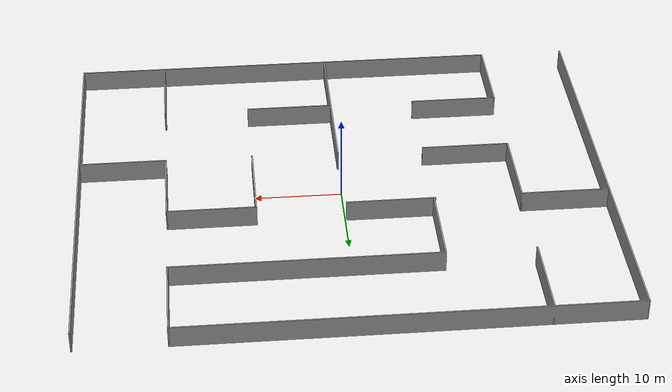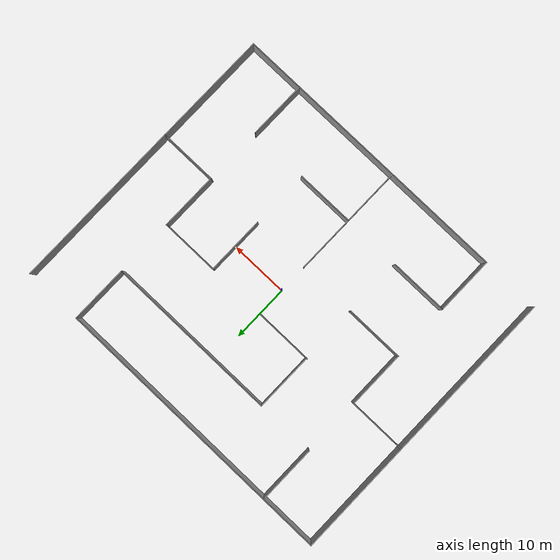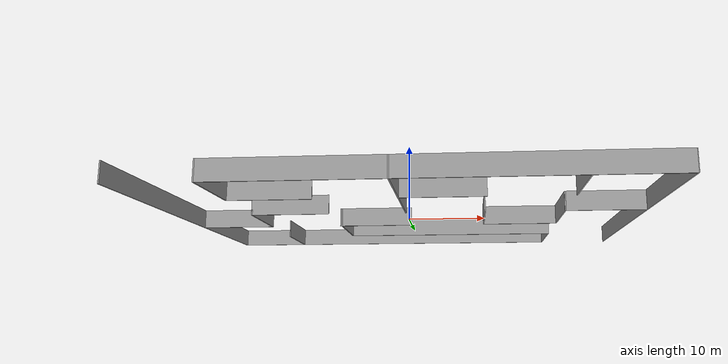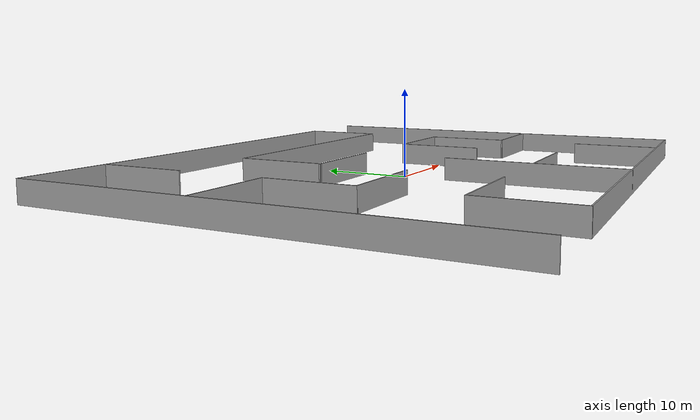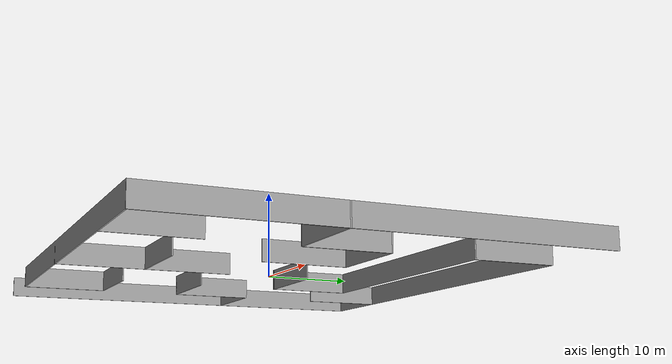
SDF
<?xml version='1.0'?>
<sdf version='1.7'>
  <model name='maze'>
    <link name='Wall_0'>
      <pose>-30 0 0 0 -0 1.5708</pose>
      <self_collide>0</self_collide>
      <enable_wind>0</enable_wind>
      <kinematic>0</kinematic>
      <visual name='Wall_0_Visual'>
        <pose>0 0 1.25 0 -0 0</pose>
        <geometry>
          <box>
            <size>50.15 0.15 2.5</size>
          </box>
        </geometry>
        <material>
          <script>
            <uri>file://media/materials/scripts/gazebo.material</uri>
            <name>Gazebo/Grey</name>
          </script>
          <ambient>1 1 1 1</ambient>
          <shader type='pixel'/>
        </material>
        <meta>
          <layer>0</layer>
        </meta>
        <transparency>0</transparency>
        <cast_shadows>1</cast_shadows>
      </visual>
      <collision name='Wall_0_Collision'>
        <laser_retro>0</laser_retro>
        <max_contacts>10</max_contacts>
        <pose>0 0 1.25 0 -0 0</pose>
        <geometry>
          <box>
            <size>50.15 0.15 2.5</size>
          </box>
        </geometry>
        <surface>
          <friction>
            <ode>
              <mu>1</mu>
              <mu2>1</mu2>
              <fdir1>0 0 0</fdir1>
              <slip1>0</slip1>
              <slip2>0</slip2>
            </ode>
            <torsional>
              <coefficient>1</coefficient>
              <patch_radius>0</patch_radius>
              <surface_radius>0</surface_radius>
              <use_patch_radius>1</use_patch_radius>
              <ode>
                <slip>0</slip>
              </ode>
            </torsional>
          </friction>
          <bounce>
            <restitution_coefficient>0</restitution_coefficient>
            <threshold>1e+06</threshold>
          </bounce>
          <contact>
            <collide_without_contact>0</collide_without_contact>
            <collide_without_contact_bitmask>1</collide_without_contact_bitmask>
            <collide_bitmask>1</collide_bitmask>
            <ode>
              <soft_cfm>0</soft_cfm>
              <soft_erp>0.2</soft_erp>
              <kp>1e+13</kp>
              <kd>1</kd>
              <max_vel>0.01</max_vel>
              <min_depth>0</min_depth>
            </ode>
            <bullet>
              <split_impulse>1</split_impulse>
              <split_impulse_penetration_threshold>-0.01</split_impulse_penetration_threshold>
              <soft_cfm>0</soft_cfm>
              <soft_erp>0.2</soft_erp>
              <kp>1e+13</kp>
              <kd>1</kd>
            </bullet>
          </contact>
        </surface>
      </collision>
    </link>
    <link name='Wall_1'>
      <pose>-5 25 0 0 -0 0</pose>
      <self_collide>0</self_collide>
      <enable_wind>0</enable_wind>
      <kinematic>0</kinematic>
      <gravity>1</gravity>
      <inertial>
        <mass>1</mass>
        <pose>0 0 0 0 -0 0</pose>
        <inertia>
          <ixx>1</ixx>
          <ixy>0</ixy>
          <ixz>0</ixz>
          <iyy>1</iyy>
          <iyz>0</iyz>
          <izz>1</izz>
        </inertia>
      </inertial>
      <visual name='Wall_1_Visual'>
        <pose>0 0 1.25 0 -0 0</pose>
        <geometry>
          <box>
            <size>50 0.15 2.5</size>
          </box>
        </geometry>
        <material>
          <script>
            <uri>file://media/materials/scripts/gazebo.material</uri>
            <name>Gazebo/Grey</name>
          </script>
          <ambient>1 1 1 1</ambient>
          <shader type='pixel'>
            <normal_map>__default__</normal_map>
          </shader>
          <diffuse>0.7 0.7 0.7 1</diffuse>
          <specular>0.01 0.01 0.01 1</specular>
          <emissive>0 0 0 1</emissive>
        </material>
        <meta>
          <layer>0</layer>
        </meta>
        <transparency>0</transparency>
        <cast_shadows>1</cast_shadows>
      </visual>
      <collision name='Wall_1_Collision'>
        <laser_retro>0</laser_retro>
        <max_contacts>10</max_contacts>
        <pose>0 0 1.25 0 -0 0</pose>
        <geometry>
          <box>
            <size>50 0.15 2.5</size>
          </box>
        </geometry>
        <surface>
          <friction>
            <ode>
              <mu>1</mu>
              <mu2>1</mu2>
              <fdir1>0 0 0</fdir1>
              <slip1>0</slip1>
              <slip2>0</slip2>
            </ode>
            <torsional>
              <coefficient>1</coefficient>
              <patch_radius>0</patch_radius>
              <surface_radius>0</surface_radius>
              <use_patch_radius>1</use_patch_radius>
              <ode>
                <slip>0</slip>
              </ode>
            </torsional>
          </friction>
          <bounce>
            <restitution_coefficient>0</restitution_coefficient>
            <threshold>1e+06</threshold>
          </bounce>
          <contact>
            <collide_without_contact>0</collide_without_contact>
            <collide_without_contact_bitmask>1</collide_without_contact_bitmask>
            <collide_bitmask>1</collide_bitmask>
            <ode>
              <soft_cfm>0</soft_cfm>
              <soft_erp>0.2</soft_erp>
              <kp>1e+13</kp>
              <kd>1</kd>
              <max_vel>0.01</max_vel>
              <min_depth>0</min_depth>
            </ode>
            <bullet>
              <split_impulse>1</split_impulse>
              <split_impulse_penetration_threshold>-0.01</split_impulse_penetration_threshold>
              <soft_cfm>0</soft_cfm>
              <soft_erp>0.2</soft_erp>
              <kp>1e+13</kp>
              <kd>1</kd>
            </bullet>
          </contact>
        </surface>
      </collision>
    </link>
    <link name='Wall_10'>
      <pose>-25 5 0 0 -0 0</pose>
      <self_collide>0</self_collide>
      <enable_wind>0</enable_wind>
      <kinematic>0</kinematic>
      <visual name='Wall_10_Visual'>
        <pose>0 0 1.25 0 -0 0</pose>
        <geometry>
          <box>
            <size>10.15 0.15 2.5</size>
          </box>
        </geometry>
        <material>
          <script>
            <uri>file://media/materials/scripts/gazebo.material</uri>
            <name>Gazebo/Grey</name>
          </script>
          <ambient>1 1 1 1</ambient>
          <shader type='pixel'/>
        </material>
        <meta>
          <layer>0</layer>
        </meta>
        <transparency>0</transparency>
        <cast_shadows>1</cast_shadows>
      </visual>
      <collision name='Wall_10_Collision'>
        <laser_retro>0</laser_retro>
        <max_contacts>10</max_contacts>
        <pose>0 0 1.25 0 -0 0</pose>
        <geometry>
          <box>
            <size>10.15 0.15 2.5</size>
          </box>
        </geometry>
        <surface>
          <friction>
            <ode>
              <mu>1</mu>
              <mu2>1</mu2>
              <fdir1>0 0 0</fdir1>
              <slip1>0</slip1>
              <slip2>0</slip2>
            </ode>
            <torsional>
              <coefficient>1</coefficient>
              <patch_radius>0</patch_radius>
              <surface_radius>0</surface_radius>
              <use_patch_radius>1</use_patch_radius>
              <ode>
                <slip>0</slip>
              </ode>
            </torsional>
          </friction>
          <bounce>
            <restitution_coefficient>0</restitution_coefficient>
            <threshold>1e+06</threshold>
          </bounce>
          <contact>
            <collide_without_contact>0</collide_without_contact>
            <collide_without_contact_bitmask>1</collide_without_contact_bitmask>
            <collide_bitmask>1</collide_bitmask>
            <ode>
              <soft_cfm>0</soft_cfm>
              <soft_erp>0.2</soft_erp>
              <kp>1e+13</kp>
              <kd>1</kd>
              <max_vel>0.01</max_vel>
              <min_depth>0</min_depth>
            </ode>
            <bullet>
              <split_impulse>1</split_impulse>
              <split_impulse_penetration_threshold>-0.01</split_impulse_penetration_threshold>
              <soft_cfm>0</soft_cfm>
              <soft_erp>0.2</soft_erp>
              <kp>1e+13</kp>
              <kd>1</kd>
            </bullet>
          </contact>
        </surface>
      </collision>
    </link>
    <link name='Wall_13'>
      <pose>-20 0 0 0 0 -1.5708</pose>
      <self_collide>0</self_collide>
      <enable_wind>0</enable_wind>
      <kinematic>0</kinematic>
      <visual name='Wall_13_Visual'>
        <pose>0 0 1.25 0 -0 0</pose>
        <geometry>
          <box>
            <size>10.15 0.15 2.5</size>
          </box>
        </geometry>
        <material>
          <script>
            <uri>file://media/materials/scripts/gazebo.material</uri>
            <name>Gazebo/Grey</name>
          </script>
          <ambient>1 1 1 1</ambient>
          <shader type='pixel'/>
        </material>
        <meta>
          <layer>0</layer>
        </meta>
        <transparency>0</transparency>
        <cast_shadows>1</cast_shadows>
      </visual>
      <collision name='Wall_13_Collision'>
        <laser_retro>0</laser_retro>
        <max_contacts>10</max_contacts>
        <pose>0 0 1.25 0 -0 0</pose>
        <geometry>
          <box>
            <size>10.15 0.15 2.5</size>
          </box>
        </geometry>
        <surface>
          <friction>
            <ode>
              <mu>1</mu>
              <mu2>1</mu2>
              <fdir1>0 0 0</fdir1>
              <slip1>0</slip1>
              <slip2>0</slip2>
            </ode>
            <torsional>
              <coefficient>1</coefficient>
              <patch_radius>0</patch_radius>
              <surface_radius>0</surface_radius>
              <use_patch_radius>1</use_patch_radius>
              <ode>
                <slip>0</slip>
              </ode>
            </torsional>
          </friction>
          <bounce>
            <restitution_coefficient>0</restitution_coefficient>
            <threshold>1e+06</threshold>
          </bounce>
          <contact>
            <collide_without_contact>0</collide_without_contact>
            <collide_without_contact_bitmask>1</collide_without_contact_bitmask>
            <collide_bitmask>1</collide_bitmask>
            <ode>
              <soft_cfm>0</soft_cfm>
              <soft_erp>0.2</soft_erp>
              <kp>1e+13</kp>
              <kd>1</kd>
              <max_vel>0.01</max_vel>
              <min_depth>0</min_depth>
            </ode>
            <bullet>
              <split_impulse>1</split_impulse>
              <split_impulse_penetration_threshold>-0.01</split_impulse_penetration_threshold>
              <soft_cfm>0</soft_cfm>
              <soft_erp>0.2</soft_erp>
              <kp>1e+13</kp>
              <kd>1</kd>
            </bullet>
          </contact>
        </surface>
      </collision>
    </link>
    <link name='Wall_15'>
      <pose>-15 -5 0 0 -0 0</pose>
      <self_collide>0</self_collide>
      <enable_wind>0</enable_wind>
      <kinematic>0</kinematic>
      <visual name='Wall_15_Visual'>
        <pose>0 0 1.25 0 -0 0</pose>
        <geometry>
          <box>
            <size>10.15 0.15 2.5</size>
          </box>
        </geometry>
        <material>
          <script>
            <uri>file://media/materials/scripts/gazebo.material</uri>
            <name>Gazebo/Grey</name>
          </script>
          <ambient>1 1 1 1</ambient>
          <shader type='pixel'/>
        </material>
        <meta>
          <layer>0</layer>
        </meta>
        <transparency>0</transparency>
        <cast_shadows>1</cast_shadows>
      </visual>
      <collision name='Wall_15_Collision'>
        <laser_retro>0</laser_retro>
        <max_contacts>10</max_contacts>
        <pose>0 0 1.25 0 -0 0</pose>
        <geometry>
          <box>
            <size>10.15 0.15 2.5</size>
          </box>
        </geometry>
        <surface>
          <friction>
            <ode>
              <mu>1</mu>
              <mu2>1</mu2>
              <fdir1>0 0 0</fdir1>
              <slip1>0</slip1>
              <slip2>0</slip2>
            </ode>
            <torsional>
              <coefficient>1</coefficient>
              <patch_radius>0</patch_radius>
              <surface_radius>0</surface_radius>
              <use_patch_radius>1</use_patch_radius>
              <ode>
                <slip>0</slip>
              </ode>
            </torsional>
          </friction>
          <bounce>
            <restitution_coefficient>0</restitution_coefficient>
            <threshold>1e+06</threshold>
          </bounce>
          <contact>
            <collide_without_contact>0</collide_without_contact>
            <collide_without_contact_bitmask>1</collide_without_contact_bitmask>
            <collide_bitmask>1</collide_bitmask>
            <ode>
              <soft_cfm>0</soft_cfm>
              <soft_erp>0.2</soft_erp>
              <kp>1e+13</kp>
              <kd>1</kd>
              <max_vel>0.01</max_vel>
              <min_depth>0</min_depth>
            </ode>
            <bullet>
              <split_impulse>1</split_impulse>
              <split_impulse_penetration_threshold>-0.01</split_impulse_penetration_threshold>
              <soft_cfm>0</soft_cfm>
              <soft_erp>0.2</soft_erp>
              <kp>1e+13</kp>
              <kd>1</kd>
            </bullet>
          </contact>
        </surface>
      </collision>
    </link>
    <link name='Wall_17'>
      <pose>-20 20 0 0 0 -1.5708</pose>
      <self_collide>0</self_collide>
      <enable_wind>0</enable_wind>
      <kinematic>0</kinematic>
      <visual name='Wall_17_Visual'>
        <pose>0 0 1.25 0 -0 0</pose>
        <geometry>
          <box>
            <size>10.15 0.15 2.5</size>
          </box>
        </geometry>
        <material>
          <script>
            <uri>file://media/materials/scripts/gazebo.material</uri>
            <name>Gazebo/Grey</name>
          </script>
          <ambient>1 1 1 1</ambient>
          <shader type='pixel'/>
        </material>
        <meta>
          <layer>0</layer>
        </meta>
        <transparency>0</transparency>
        <cast_shadows>1</cast_shadows>
      </visual>
      <collision name='Wall_17_Collision'>
        <laser_retro>0</laser_retro>
        <max_contacts>10</max_contacts>
        <pose>0 0 1.25 0 -0 0</pose>
        <geometry>
          <box>
            <size>10.15 0.15 2.5</size>
          </box>
        </geometry>
        <surface>
          <friction>
            <ode>
              <mu>1</mu>
              <mu2>1</mu2>
              <fdir1>0 0 0</fdir1>
              <slip1>0</slip1>
              <slip2>0</slip2>
            </ode>
            <torsional>
              <coefficient>1</coefficient>
              <patch_radius>0</patch_radius>
              <surface_radius>0</surface_radius>
              <use_patch_radius>1</use_patch_radius>
              <ode>
                <slip>0</slip>
              </ode>
            </torsional>
          </friction>
          <bounce>
            <restitution_coefficient>0</restitution_coefficient>
            <threshold>1e+06</threshold>
          </bounce>
          <contact>
            <collide_without_contact>0</collide_without_contact>
            <collide_without_contact_bitmask>1</collide_without_contact_bitmask>
            <collide_bitmask>1</collide_bitmask>
            <ode>
              <soft_cfm>0</soft_cfm>
              <soft_erp>0.2</soft_erp>
              <kp>1e+13</kp>
              <kd>1</kd>
              <max_vel>0.01</max_vel>
              <min_depth>0</min_depth>
            </ode>
            <bullet>
              <split_impulse>1</split_impulse>
              <split_impulse_penetration_threshold>-0.01</split_impulse_penetration_threshold>
              <soft_cfm>0</soft_cfm>
              <soft_erp>0.2</soft_erp>
              <kp>1e+13</kp>
              <kd>1</kd>
            </bullet>
          </contact>
        </surface>
      </collision>
    </link>
    <link name='Wall_19'>
      <pose>-1e-06 -15 0 0 -0 1.5708</pose>
      <self_collide>0</self_collide>
      <enable_wind>0</enable_wind>
      <kinematic>0</kinematic>
      <visual name='Wall_19_Visual'>
        <pose>0 0 1.25 0 -0 0</pose>
        <geometry>
          <box>
            <size>20.15 0.15 2.5</size>
          </box>
        </geometry>
        <material>
          <script>
            <uri>file://media/materials/scripts/gazebo.material</uri>
            <name>Gazebo/Grey</name>
          </script>
          <ambient>1 1 1 1</ambient>
          <shader type='pixel'/>
        </material>
        <meta>
          <layer>0</layer>
        </meta>
        <transparency>0</transparency>
        <cast_shadows>1</cast_shadows>
      </visual>
      <collision name='Wall_19_Collision'>
        <laser_retro>0</laser_retro>
        <max_contacts>10</max_contacts>
        <pose>0 0 1.25 0 -0 0</pose>
        <geometry>
          <box>
            <size>20.15 0.15 2.5</size>
          </box>
        </geometry>
        <surface>
          <friction>
            <ode>
              <mu>1</mu>
              <mu2>1</mu2>
              <fdir1>0 0 0</fdir1>
              <slip1>0</slip1>
              <slip2>0</slip2>
            </ode>
            <torsional>
              <coefficient>1</coefficient>
              <patch_radius>0</patch_radius>
              <surface_radius>0</surface_radius>
              <use_patch_radius>1</use_patch_radius>
              <ode>
                <slip>0</slip>
              </ode>
            </torsional>
          </friction>
          <bounce>
            <restitution_coefficient>0</restitution_coefficient>
            <threshold>1e+06</threshold>
          </bounce>
          <contact>
            <collide_without_contact>0</collide_without_contact>
            <collide_without_contact_bitmask>1</collide_without_contact_bitmask>
            <collide_bitmask>1</collide_bitmask>
            <ode>
              <soft_cfm>0</soft_cfm>
              <soft_erp>0.2</soft_erp>
              <kp>1e+13</kp>
              <kd>1</kd>
              <max_vel>0.01</max_vel>
              <min_depth>0</min_depth>
            </ode>
            <bullet>
              <split_impulse>1</split_impulse>
              <split_impulse_penetration_threshold>-0.01</split_impulse_penetration_threshold>
              <soft_cfm>0</soft_cfm>
              <soft_erp>0.2</soft_erp>
              <kp>1e+13</kp>
              <kd>1</kd>
            </bullet>
          </contact>
        </surface>
      </collision>
    </link>
    <link name='Wall_2'>
      <pose>30 0 0 0 0 -1.5708</pose>
      <self_collide>0</self_collide>
      <enable_wind>0</enable_wind>
      <kinematic>0</kinematic>
      <visual name='Wall_2_Visual'>
        <pose>0 0 1.25 0 -0 0</pose>
        <geometry>
          <box>
            <size>50.15 0.15 2.5</size>
          </box>
        </geometry>
        <material>
          <script>
            <uri>file://media/materials/scripts/gazebo.material</uri>
            <name>Gazebo/Grey</name>
          </script>
          <ambient>1 1 1 1</ambient>
          <shader type='pixel'/>
        </material>
        <meta>
          <layer>0</layer>
        </meta>
        <transparency>0</transparency>
        <cast_shadows>1</cast_shadows>
      </visual>
      <collision name='Wall_2_Collision'>
        <laser_retro>0</laser_retro>
        <max_contacts>10</max_contacts>
        <pose>0 0 1.25 0 -0 0</pose>
        <geometry>
          <box>
            <size>50.15 0.15 2.5</size>
          </box>
        </geometry>
        <surface>
          <friction>
            <ode>
              <mu>1</mu>
              <mu2>1</mu2>
              <fdir1>0 0 0</fdir1>
              <slip1>0</slip1>
              <slip2>0</slip2>
            </ode>
            <torsional>
              <coefficient>1</coefficient>
              <patch_radius>0</patch_radius>
              <surface_radius>0</surface_radius>
              <use_patch_radius>1</use_patch_radius>
              <ode>
                <slip>0</slip>
              </ode>
            </torsional>
          </friction>
          <bounce>
            <restitution_coefficient>0</restitution_coefficient>
            <threshold>1e+06</threshold>
          </bounce>
          <contact>
            <collide_without_contact>0</collide_without_contact>
            <collide_without_contact_bitmask>1</collide_without_contact_bitmask>
            <collide_bitmask>1</collide_bitmask>
            <ode>
              <soft_cfm>0</soft_cfm>
              <soft_erp>0.2</soft_erp>
              <kp>1e+13</kp>
              <kd>1</kd>
              <max_vel>0.01</max_vel>
              <min_depth>0</min_depth>
            </ode>
            <bullet>
              <split_impulse>1</split_impulse>
              <split_impulse_penetration_threshold>-0.01</split_impulse_penetration_threshold>
              <soft_cfm>0</soft_cfm>
              <soft_erp>0.2</soft_erp>
              <kp>1e+13</kp>
              <kd>1</kd>
            </bullet>
          </contact>
        </surface>
      </collision>
    </link>
    <link name='Wall_21'>
      <pose>20 -20 0 0 -0 1.5708</pose>
      <self_collide>0</self_collide>
      <enable_wind>0</enable_wind>
      <kinematic>0</kinematic>
      <visual name='Wall_21_Visual'>
        <pose>0 0 1.25 0 -0 0</pose>
        <geometry>
          <box>
            <size>10.15 0.15 2.5</size>
          </box>
        </geometry>
        <material>
          <script>
            <uri>file://media/materials/scripts/gazebo.material</uri>
            <name>Gazebo/Grey</name>
          </script>
          <ambient>1 1 1 1</ambient>
          <shader type='pixel'/>
        </material>
        <meta>
          <layer>0</layer>
        </meta>
        <transparency>0</transparency>
        <cast_shadows>1</cast_shadows>
      </visual>
      <collision name='Wall_21_Collision'>
        <laser_retro>0</laser_retro>
        <max_contacts>10</max_contacts>
        <pose>0 0 1.25 0 -0 0</pose>
        <geometry>
          <box>
            <size>10.15 0.15 2.5</size>
          </box>
        </geometry>
        <surface>
          <friction>
            <ode>
              <mu>1</mu>
              <mu2>1</mu2>
              <fdir1>0 0 0</fdir1>
              <slip1>0</slip1>
              <slip2>0</slip2>
            </ode>
            <torsional>
              <coefficient>1</coefficient>
              <patch_radius>0</patch_radius>
              <surface_radius>0</surface_radius>
              <use_patch_radius>1</use_patch_radius>
              <ode>
                <slip>0</slip>
              </ode>
            </torsional>
          </friction>
          <bounce>
            <restitution_coefficient>0</restitution_coefficient>
            <threshold>1e+06</threshold>
          </bounce>
          <contact>
            <collide_without_contact>0</collide_without_contact>
            <collide_without_contact_bitmask>1</collide_without_contact_bitmask>
            <collide_bitmask>1</collide_bitmask>
            <ode>
              <soft_cfm>0</soft_cfm>
              <soft_erp>0.2</soft_erp>
              <kp>1e+13</kp>
              <kd>1</kd>
              <max_vel>0.01</max_vel>
              <min_depth>0</min_depth>
            </ode>
            <bullet>
              <split_impulse>1</split_impulse>
              <split_impulse_penetration_threshold>-0.01</split_impulse_penetration_threshold>
              <soft_cfm>0</soft_cfm>
              <soft_erp>0.2</soft_erp>
              <kp>1e+13</kp>
              <kd>1</kd>
            </bullet>
          </contact>
        </surface>
      </collision>
    </link>
    <link name='Wall_23'>
      <pose>10 0 0 0 0 -1.5708</pose>
      <self_collide>0</self_collide>
      <enable_wind>0</enable_wind>
      <kinematic>0</kinematic>
      <visual name='Wall_23_Visual'>
        <pose>0 0 1.25 0 -0 0</pose>
        <geometry>
          <box>
            <size>10.15 0.15 2.5</size>
          </box>
        </geometry>
        <material>
          <script>
            <uri>file://media/materials/scripts/gazebo.material</uri>
            <name>Gazebo/Grey</name>
          </script>
          <ambient>1 1 1 1</ambient>
          <shader type='pixel'/>
        </material>
        <meta>
          <layer>0</layer>
        </meta>
        <transparency>0</transparency>
        <cast_shadows>1</cast_shadows>
      </visual>
      <collision name='Wall_23_Collision'>
        <laser_retro>0</laser_retro>
        <max_contacts>10</max_contacts>
        <pose>0 0 1.25 0 -0 0</pose>
        <geometry>
          <box>
            <size>10.15 0.15 2.5</size>
          </box>
        </geometry>
        <surface>
          <friction>
            <ode>
              <mu>1</mu>
              <mu2>1</mu2>
              <fdir1>0 0 0</fdir1>
              <slip1>0</slip1>
              <slip2>0</slip2>
            </ode>
            <torsional>
              <coefficient>1</coefficient>
              <patch_radius>0</patch_radius>
              <surface_radius>0</surface_radius>
              <use_patch_radius>1</use_patch_radius>
              <ode>
                <slip>0</slip>
              </ode>
            </torsional>
          </friction>
          <bounce>
            <restitution_coefficient>0</restitution_coefficient>
            <threshold>1e+06</threshold>
          </bounce>
          <contact>
            <collide_without_contact>0</collide_without_contact>
            <collide_without_contact_bitmask>1</collide_without_contact_bitmask>
            <collide_bitmask>1</collide_bitmask>
            <ode>
              <soft_cfm>0</soft_cfm>
              <soft_erp>0.2</soft_erp>
              <kp>1e+13</kp>
              <kd>1</kd>
              <max_vel>0.01</max_vel>
              <min_depth>0</min_depth>
            </ode>
            <bullet>
              <split_impulse>1</split_impulse>
              <split_impulse_penetration_threshold>-0.01</split_impulse_penetration_threshold>
              <soft_cfm>0</soft_cfm>
              <soft_erp>0.2</soft_erp>
              <kp>1e+13</kp>
              <kd>1</kd>
            </bullet>
          </contact>
        </surface>
      </collision>
    </link>
    <link name='Wall_25'>
      <pose>5 -15 0 0 -0 0</pose>
      <self_collide>0</self_collide>
      <enable_wind>0</enable_wind>
      <kinematic>0</kinematic>
      <visual name='Wall_25_Visual'>
        <pose>0 0 1.25 0 -0 0</pose>
        <geometry>
          <box>
            <size>10.15 0.15 2.5</size>
          </box>
        </geometry>
        <material>
          <script>
            <uri>file://media/materials/scripts/gazebo.material</uri>
            <name>Gazebo/Grey</name>
          </script>
          <ambient>1 1 1 1</ambient>
          <shader type='pixel'/>
        </material>
        <meta>
          <layer>0</layer>
        </meta>
        <transparency>0</transparency>
        <cast_shadows>1</cast_shadows>
      </visual>
      <collision name='Wall_25_Collision'>
        <laser_retro>0</laser_retro>
        <max_contacts>10</max_contacts>
        <pose>0 0 1.25 0 -0 0</pose>
        <geometry>
          <box>
            <size>10.15 0.15 2.5</size>
          </box>
        </geometry>
        <surface>
          <friction>
            <ode>
              <mu>1</mu>
              <mu2>1</mu2>
              <fdir1>0 0 0</fdir1>
              <slip1>0</slip1>
              <slip2>0</slip2>
            </ode>
            <torsional>
              <coefficient>1</coefficient>
              <patch_radius>0</patch_radius>
              <surface_radius>0</surface_radius>
              <use_patch_radius>1</use_patch_radius>
              <ode>
                <slip>0</slip>
              </ode>
            </torsional>
          </friction>
          <bounce>
            <restitution_coefficient>0</restitution_coefficient>
            <threshold>1e+06</threshold>
          </bounce>
          <contact>
            <collide_without_contact>0</collide_without_contact>
            <collide_without_contact_bitmask>1</collide_without_contact_bitmask>
            <collide_bitmask>1</collide_bitmask>
            <ode>
              <soft_cfm>0</soft_cfm>
              <soft_erp>0.2</soft_erp>
              <kp>1e+13</kp>
              <kd>1</kd>
              <max_vel>0.01</max_vel>
              <min_depth>0</min_depth>
            </ode>
            <bullet>
              <split_impulse>1</split_impulse>
              <split_impulse_penetration_threshold>-0.01</split_impulse_penetration_threshold>
              <soft_cfm>0</soft_cfm>
              <soft_erp>0.2</soft_erp>
              <kp>1e+13</kp>
              <kd>1</kd>
            </bullet>
          </contact>
        </surface>
      </collision>
    </link>
    <link name='Wall_27'>
      <pose>15 5 0 0 -0 3.14159</pose>
      <self_collide>0</self_collide>
      <enable_wind>0</enable_wind>
      <kinematic>0</kinematic>
      <visual name='Wall_27_Visual'>
        <pose>0 0 1.25 0 -0 0</pose>
        <geometry>
          <box>
            <size>10.15 0.15 2.5</size>
          </box>
        </geometry>
        <material>
          <script>
            <uri>file://media/materials/scripts/gazebo.material</uri>
            <name>Gazebo/Grey</name>
          </script>
          <ambient>1 1 1 1</ambient>
          <shader type='pixel'/>
        </material>
        <meta>
          <layer>0</layer>
        </meta>
        <transparency>0</transparency>
        <cast_shadows>1</cast_shadows>
      </visual>
      <collision name='Wall_27_Collision'>
        <laser_retro>0</laser_retro>
        <max_contacts>10</max_contacts>
        <pose>0 0 1.25 0 -0 0</pose>
        <geometry>
          <box>
            <size>10.15 0.15 2.5</size>
          </box>
        </geometry>
        <surface>
          <friction>
            <ode>
              <mu>1</mu>
              <mu2>1</mu2>
              <fdir1>0 0 0</fdir1>
              <slip1>0</slip1>
              <slip2>0</slip2>
            </ode>
            <torsional>
              <coefficient>1</coefficient>
              <patch_radius>0</patch_radius>
              <surface_radius>0</surface_radius>
              <use_patch_radius>1</use_patch_radius>
              <ode>
                <slip>0</slip>
              </ode>
            </torsional>
          </friction>
          <bounce>
            <restitution_coefficient>0</restitution_coefficient>
            <threshold>1e+06</threshold>
          </bounce>
          <contact>
            <collide_without_contact>0</collide_without_contact>
            <collide_without_contact_bitmask>1</collide_without_contact_bitmask>
            <collide_bitmask>1</collide_bitmask>
            <ode>
              <soft_cfm>0</soft_cfm>
              <soft_erp>0.2</soft_erp>
              <kp>1e+13</kp>
              <kd>1</kd>
              <max_vel>0.01</max_vel>
              <min_depth>0</min_depth>
            </ode>
            <bullet>
              <split_impulse>1</split_impulse>
              <split_impulse_penetration_threshold>-0.01</split_impulse_penetration_threshold>
              <soft_cfm>0</soft_cfm>
              <soft_erp>0.2</soft_erp>
              <kp>1e+13</kp>
              <kd>1</kd>
            </bullet>
          </contact>
        </surface>
      </collision>
    </link>
    <link name='Wall_29'>
      <pose>20 0 0 0 -0 1.5708</pose>
      <self_collide>0</self_collide>
      <enable_wind>0</enable_wind>
      <kinematic>0</kinematic>
      <visual name='Wall_29_Visual'>
        <pose>0 0 1.25 0 -0 0</pose>
        <geometry>
          <box>
            <size>10.15 0.15 2.5</size>
          </box>
        </geometry>
        <material>
          <script>
            <uri>file://media/materials/scripts/gazebo.material</uri>
            <name>Gazebo/Grey</name>
          </script>
          <ambient>1 1 1 1</ambient>
          <shader type='pixel'/>
        </material>
        <meta>
          <layer>0</layer>
        </meta>
        <transparency>0</transparency>
        <cast_shadows>1</cast_shadows>
      </visual>
      <collision name='Wall_29_Collision'>
        <laser_retro>0</laser_retro>
        <max_contacts>10</max_contacts>
        <pose>0 0 1.25 0 -0 0</pose>
        <geometry>
          <box>
            <size>10.15 0.15 2.5</size>
          </box>
        </geometry>
        <surface>
          <friction>
            <ode>
              <mu>1</mu>
              <mu2>1</mu2>
              <fdir1>0 0 0</fdir1>
              <slip1>0</slip1>
              <slip2>0</slip2>
            </ode>
            <torsional>
              <coefficient>1</coefficient>
              <patch_radius>0</patch_radius>
              <surface_radius>0</surface_radius>
              <use_patch_radius>1</use_patch_radius>
              <ode>
                <slip>0</slip>
              </ode>
            </torsional>
          </friction>
          <bounce>
            <restitution_coefficient>0</restitution_coefficient>
            <threshold>1e+06</threshold>
          </bounce>
          <contact>
            <collide_without_contact>0</collide_without_contact>
            <collide_without_contact_bitmask>1</collide_without_contact_bitmask>
            <collide_bitmask>1</collide_bitmask>
            <ode>
              <soft_cfm>0</soft_cfm>
              <soft_erp>0.2</soft_erp>
              <kp>1e+13</kp>
              <kd>1</kd>
              <max_vel>0.01</max_vel>
              <min_depth>0</min_depth>
            </ode>
            <bullet>
              <split_impulse>1</split_impulse>
              <split_impulse_penetration_threshold>-0.01</split_impulse_penetration_threshold>
              <soft_cfm>0</soft_cfm>
              <soft_erp>0.2</soft_erp>
              <kp>1e+13</kp>
              <kd>1</kd>
            </bullet>
          </contact>
        </surface>
      </collision>
    </link>
    <link name='Wall_3'>
      <pose>5 -25 0 0 -0 3.14159</pose>
      <self_collide>0</self_collide>
      <enable_wind>0</enable_wind>
      <kinematic>0</kinematic>
      <gravity>1</gravity>
      <inertial>
        <mass>1</mass>
        <pose>0 0 0 0 -0 0</pose>
        <inertia>
          <ixx>1</ixx>
          <ixy>0</ixy>
          <ixz>0</ixz>
          <iyy>1</iyy>
          <iyz>0</iyz>
          <izz>1</izz>
        </inertia>
      </inertial>
      <visual name='Wall_3_Visual'>
        <pose>0 0 1.25 0 -0 0</pose>
        <geometry>
          <box>
            <size>50 0.15 2.5</size>
          </box>
        </geometry>
        <material>
          <script>
            <uri>file://media/materials/scripts/gazebo.material</uri>
            <name>Gazebo/Grey</name>
          </script>
          <ambient>1 1 1 1</ambient>
          <shader type='pixel'>
            <normal_map>__default__</normal_map>
          </shader>
          <diffuse>0.7 0.7 0.7 1</diffuse>
          <specular>0.01 0.01 0.01 1</specular>
          <emissive>0 0 0 1</emissive>
        </material>
        <meta>
          <layer>0</layer>
        </meta>
        <transparency>0</transparency>
        <cast_shadows>1</cast_shadows>
      </visual>
      <collision name='Wall_3_Collision'>
        <laser_retro>0</laser_retro>
        <max_contacts>10</max_contacts>
        <pose>0 0 1.25 0 -0 0</pose>
        <geometry>
          <box>
            <size>50 0.15 2.5</size>
          </box>
        </geometry>
        <surface>
          <friction>
            <ode>
              <mu>1</mu>
              <mu2>1</mu2>
              <fdir1>0 0 0</fdir1>
              <slip1>0</slip1>
              <slip2>0</slip2>
            </ode>
            <torsional>
              <coefficient>1</coefficient>
              <patch_radius>0</patch_radius>
              <surface_radius>0</surface_radius>
              <use_patch_radius>1</use_patch_radius>
              <ode>
                <slip>0</slip>
              </ode>
            </torsional>
          </friction>
          <bounce>
            <restitution_coefficient>0</restitution_coefficient>
            <threshold>1e+06</threshold>
          </bounce>
          <contact>
            <collide_without_contact>0</collide_without_contact>
            <collide_without_contact_bitmask>1</collide_without_contact_bitmask>
            <collide_bitmask>1</collide_bitmask>
            <ode>
              <soft_cfm>0</soft_cfm>
              <soft_erp>0.2</soft_erp>
              <kp>1e+13</kp>
              <kd>1</kd>
              <max_vel>0.01</max_vel>
              <min_depth>0</min_depth>
            </ode>
            <bullet>
              <split_impulse>1</split_impulse>
              <split_impulse_penetration_threshold>-0.01</split_impulse_penetration_threshold>
              <soft_cfm>0</soft_cfm>
              <soft_erp>0.2</soft_erp>
              <kp>1e+13</kp>
              <kd>1</kd>
            </bullet>
          </contact>
        </surface>
      </collision>
    </link>
    <link name='Wall_31'>
      <pose>20 20 0 0 0 -1.5708</pose>
      <self_collide>0</self_collide>
      <enable_wind>0</enable_wind>
      <kinematic>0</kinematic>
      <visual name='Wall_31_Visual'>
        <pose>0 0 1.25 0 -0 0</pose>
        <geometry>
          <box>
            <size>10.15 0.15 2.5</size>
          </box>
        </geometry>
        <material>
          <script>
            <uri>file://media/materials/scripts/gazebo.material</uri>
            <name>Gazebo/Grey</name>
          </script>
          <ambient>1 1 1 1</ambient>
          <shader type='pixel'/>
        </material>
        <meta>
          <layer>0</layer>
        </meta>
        <transparency>0</transparency>
        <cast_shadows>1</cast_shadows>
      </visual>
      <collision name='Wall_31_Collision'>
        <laser_retro>0</laser_retro>
        <max_contacts>10</max_contacts>
        <pose>0 0 1.25 0 -0 0</pose>
        <geometry>
          <box>
            <size>10.15 0.15 2.5</size>
          </box>
        </geometry>
        <surface>
          <friction>
            <ode>
              <mu>1</mu>
              <mu2>1</mu2>
              <fdir1>0 0 0</fdir1>
              <slip1>0</slip1>
              <slip2>0</slip2>
            </ode>
            <torsional>
              <coefficient>1</coefficient>
              <patch_radius>0</patch_radius>
              <surface_radius>0</surface_radius>
              <use_patch_radius>1</use_patch_radius>
              <ode>
                <slip>0</slip>
              </ode>
            </torsional>
          </friction>
          <bounce>
            <restitution_coefficient>0</restitution_coefficient>
            <threshold>1e+06</threshold>
          </bounce>
          <contact>
            <collide_without_contact>0</collide_without_contact>
            <collide_without_contact_bitmask>1</collide_without_contact_bitmask>
            <collide_bitmask>1</collide_bitmask>
            <ode>
              <soft_cfm>0</soft_cfm>
              <soft_erp>0.2</soft_erp>
              <kp>1e+13</kp>
              <kd>1</kd>
              <max_vel>0.01</max_vel>
              <min_depth>0</min_depth>
            </ode>
            <bullet>
              <split_impulse>1</split_impulse>
              <split_impulse_penetration_threshold>-0.01</split_impulse_penetration_threshold>
              <soft_cfm>0</soft_cfm>
              <soft_erp>0.2</soft_erp>
              <kp>1e+13</kp>
              <kd>1</kd>
            </bullet>
          </contact>
        </surface>
      </collision>
    </link>
    <link name='Wall_33'>
      <pose>25 -5 0 0 -0 3.14159</pose>
      <self_collide>0</self_collide>
      <enable_wind>0</enable_wind>
      <kinematic>0</kinematic>
      <visual name='Wall_33_Visual'>
        <pose>0 0 1.25 0 -0 0</pose>
        <geometry>
          <box>
            <size>10.15 0.15 2.5</size>
          </box>
        </geometry>
        <material>
          <script>
            <uri>file://media/materials/scripts/gazebo.material</uri>
            <name>Gazebo/Grey</name>
          </script>
          <ambient>1 1 1 1</ambient>
          <shader type='pixel'/>
        </material>
        <meta>
          <layer>0</layer>
        </meta>
        <transparency>0</transparency>
        <cast_shadows>1</cast_shadows>
      </visual>
      <collision name='Wall_33_Collision'>
        <laser_retro>0</laser_retro>
        <max_contacts>10</max_contacts>
        <pose>0 0 1.25 0 -0 0</pose>
        <geometry>
          <box>
            <size>10.15 0.15 2.5</size>
          </box>
        </geometry>
        <surface>
          <friction>
            <ode>
              <mu>1</mu>
              <mu2>1</mu2>
              <fdir1>0 0 0</fdir1>
              <slip1>0</slip1>
              <slip2>0</slip2>
            </ode>
            <torsional>
              <coefficient>1</coefficient>
              <patch_radius>0</patch_radius>
              <surface_radius>0</surface_radius>
              <use_patch_radius>1</use_patch_radius>
              <ode>
                <slip>0</slip>
              </ode>
            </torsional>
          </friction>
          <bounce>
            <restitution_coefficient>0</restitution_coefficient>
            <threshold>1e+06</threshold>
          </bounce>
          <contact>
            <collide_without_contact>0</collide_without_contact>
            <collide_without_contact_bitmask>1</collide_without_contact_bitmask>
            <collide_bitmask>1</collide_bitmask>
            <ode>
              <soft_cfm>0</soft_cfm>
              <soft_erp>0.2</soft_erp>
              <kp>1e+13</kp>
              <kd>1</kd>
              <max_vel>0.01</max_vel>
              <min_depth>0</min_depth>
            </ode>
            <bullet>
              <split_impulse>1</split_impulse>
              <split_impulse_penetration_threshold>-0.01</split_impulse_penetration_threshold>
              <soft_cfm>0</soft_cfm>
              <soft_erp>0.2</soft_erp>
              <kp>1e+13</kp>
              <kd>1</kd>
            </bullet>
          </contact>
        </surface>
      </collision>
    </link>
    <link name='Wall_35'>
      <pose>-5.14232 5 0 0 -0 3.14159</pose>
      <self_collide>0</self_collide>
      <enable_wind>0</enable_wind>
      <kinematic>0</kinematic>
      <visual name='Wall_35_Visual'>
        <pose>0 0 1.25 0 -0 0</pose>
        <geometry>
          <box>
            <size>10.15 0.15 2.5</size>
          </box>
        </geometry>
        <material>
          <script>
            <uri>file://media/materials/scripts/gazebo.material</uri>
            <name>Gazebo/Grey</name>
          </script>
          <ambient>1 1 1 1</ambient>
          <shader type='pixel'/>
        </material>
        <meta>
          <layer>0</layer>
        </meta>
        <transparency>0</transparency>
        <cast_shadows>1</cast_shadows>
      </visual>
      <collision name='Wall_35_Collision'>
        <laser_retro>0</laser_retro>
        <max_contacts>10</max_contacts>
        <pose>0 0 1.25 0 -0 0</pose>
        <geometry>
          <box>
            <size>10.15 0.15 2.5</size>
          </box>
        </geometry>
        <surface>
          <friction>
            <ode>
              <mu>1</mu>
              <mu2>1</mu2>
              <fdir1>0 0 0</fdir1>
              <slip1>0</slip1>
              <slip2>0</slip2>
            </ode>
            <torsional>
              <coefficient>1</coefficient>
              <patch_radius>0</patch_radius>
              <surface_radius>0</surface_radius>
              <use_patch_radius>1</use_patch_radius>
              <ode>
                <slip>0</slip>
              </ode>
            </torsional>
          </friction>
          <bounce>
            <restitution_coefficient>0</restitution_coefficient>
            <threshold>1e+06</threshold>
          </bounce>
          <contact>
            <collide_without_contact>0</collide_without_contact>
            <collide_without_contact_bitmask>1</collide_without_contact_bitmask>
            <collide_bitmask>1</collide_bitmask>
            <ode>
              <soft_cfm>0</soft_cfm>
              <soft_erp>0.2</soft_erp>
              <kp>1e+13</kp>
              <kd>1</kd>
              <max_vel>0.01</max_vel>
              <min_depth>0</min_depth>
            </ode>
            <bullet>
              <split_impulse>1</split_impulse>
              <split_impulse_penetration_threshold>-0.01</split_impulse_penetration_threshold>
              <soft_cfm>0</soft_cfm>
              <soft_erp>0.2</soft_erp>
              <kp>1e+13</kp>
              <kd>1</kd>
            </bullet>
          </contact>
        </surface>
      </collision>
    </link>
    <link name='Wall_39'>
      <pose>5 15 0 0 -0 3.14159</pose>
      <self_collide>0</self_collide>
      <enable_wind>0</enable_wind>
      <kinematic>0</kinematic>
      <visual name='Wall_39_Visual'>
        <pose>0 0 1.25 0 -0 0</pose>
        <geometry>
          <box>
            <size>30.15 0.15 2.5</size>
          </box>
        </geometry>
        <material>
          <script>
            <uri>file://media/materials/scripts/gazebo.material</uri>
            <name>Gazebo/Grey</name>
          </script>
          <ambient>1 1 1 1</ambient>
          <shader type='pixel'/>
        </material>
        <meta>
          <layer>0</layer>
        </meta>
        <transparency>0</transparency>
        <cast_shadows>1</cast_shadows>
      </visual>
      <collision name='Wall_39_Collision'>
        <laser_retro>0</laser_retro>
        <max_contacts>10</max_contacts>
        <pose>0 0 1.25 0 -0 0</pose>
        <geometry>
          <box>
            <size>30.15 0.15 2.5</size>
          </box>
        </geometry>
        <surface>
          <friction>
            <ode>
              <mu>1</mu>
              <mu2>1</mu2>
              <fdir1>0 0 0</fdir1>
              <slip1>0</slip1>
              <slip2>0</slip2>
            </ode>
            <torsional>
              <coefficient>1</coefficient>
              <patch_radius>0</patch_radius>
              <surface_radius>0</surface_radius>
              <use_patch_radius>1</use_patch_radius>
              <ode>
                <slip>0</slip>
              </ode>
            </torsional>
          </friction>
          <bounce>
            <restitution_coefficient>0</restitution_coefficient>
            <threshold>1e+06</threshold>
          </bounce>
          <contact>
            <collide_without_contact>0</collide_without_contact>
            <collide_without_contact_bitmask>1</collide_without_contact_bitmask>
            <collide_bitmask>1</collide_bitmask>
            <ode>
              <soft_cfm>0</soft_cfm>
              <soft_erp>0.2</soft_erp>
              <kp>1e+13</kp>
              <kd>1</kd>
              <max_vel>0.01</max_vel>
              <min_depth>0</min_depth>
            </ode>
            <bullet>
              <split_impulse>1</split_impulse>
              <split_impulse_penetration_threshold>-0.01</split_impulse_penetration_threshold>
              <soft_cfm>0</soft_cfm>
              <soft_erp>0.2</soft_erp>
              <kp>1e+13</kp>
              <kd>1</kd>
            </bullet>
          </contact>
        </surface>
      </collision>
    </link>
    <link name='Wall_41'>
      <pose>-10 10 0 0 -0 1.5708</pose>
      <self_collide>0</self_collide>
      <enable_wind>0</enable_wind>
      <kinematic>0</kinematic>
      <visual name='Wall_41_Visual'>
        <pose>0 0 1.25 0 -0 0</pose>
        <geometry>
          <box>
            <size>10.15 0.15 2.5</size>
          </box>
        </geometry>
        <material>
          <script>
            <uri>file://media/materials/scripts/gazebo.material</uri>
            <name>Gazebo/Grey</name>
          </script>
          <ambient>1 1 1 1</ambient>
          <shader type='pixel'/>
        </material>
        <meta>
          <layer>0</layer>
        </meta>
        <transparency>0</transparency>
        <cast_shadows>1</cast_shadows>
      </visual>
      <collision name='Wall_41_Collision'>
        <laser_retro>0</laser_retro>
        <max_contacts>10</max_contacts>
        <pose>0 0 1.25 0 -0 0</pose>
        <geometry>
          <box>
            <size>10.15 0.15 2.5</size>
          </box>
        </geometry>
        <surface>
          <friction>
            <ode>
              <mu>1</mu>
              <mu2>1</mu2>
              <fdir1>0 0 0</fdir1>
              <slip1>0</slip1>
              <slip2>0</slip2>
            </ode>
            <torsional>
              <coefficient>1</coefficient>
              <patch_radius>0</patch_radius>
              <surface_radius>0</surface_radius>
              <use_patch_radius>1</use_patch_radius>
              <ode>
                <slip>0</slip>
              </ode>
            </torsional>
          </friction>
          <bounce>
            <restitution_coefficient>0</restitution_coefficient>
            <threshold>1e+06</threshold>
          </bounce>
          <contact>
            <collide_without_contact>0</collide_without_contact>
            <collide_without_contact_bitmask>1</collide_without_contact_bitmask>
            <collide_bitmask>1</collide_bitmask>
            <ode>
              <soft_cfm>0</soft_cfm>
              <soft_erp>0.2</soft_erp>
              <kp>1e+13</kp>
              <kd>1</kd>
              <max_vel>0.01</max_vel>
              <min_depth>0</min_depth>
            </ode>
            <bullet>
              <split_impulse>1</split_impulse>
              <split_impulse_penetration_threshold>-0.01</split_impulse_penetration_threshold>
              <soft_cfm>0</soft_cfm>
              <soft_erp>0.2</soft_erp>
              <kp>1e+13</kp>
              <kd>1</kd>
            </bullet>
          </contact>
        </surface>
      </collision>
    </link>
    <link name='Wall_5'>
      <pose>-20 -20 0 0 -0 1.5708</pose>
      <self_collide>0</self_collide>
      <enable_wind>0</enable_wind>
      <kinematic>0</kinematic>
      <visual name='Wall_5_Visual'>
        <pose>0 0 1.25 0 -0 0</pose>
        <geometry>
          <box>
            <size>10.15 0.15 2.5</size>
          </box>
        </geometry>
        <material>
          <script>
            <uri>file://media/materials/scripts/gazebo.material</uri>
            <name>Gazebo/Grey</name>
          </script>
          <ambient>1 1 1 1</ambient>
          <shader type='pixel'/>
        </material>
        <meta>
          <layer>0</layer>
        </meta>
        <transparency>0</transparency>
        <cast_shadows>1</cast_shadows>
      </visual>
      <collision name='Wall_5_Collision'>
        <laser_retro>0</laser_retro>
        <max_contacts>10</max_contacts>
        <pose>0 0 1.25 0 -0 0</pose>
        <geometry>
          <box>
            <size>10.15 0.15 2.5</size>
          </box>
        </geometry>
        <surface>
          <friction>
            <ode>
              <mu>1</mu>
              <mu2>1</mu2>
              <fdir1>0 0 0</fdir1>
              <slip1>0</slip1>
              <slip2>0</slip2>
            </ode>
            <torsional>
              <coefficient>1</coefficient>
              <patch_radius>0</patch_radius>
              <surface_radius>0</surface_radius>
              <use_patch_radius>1</use_patch_radius>
              <ode>
                <slip>0</slip>
              </ode>
            </torsional>
          </friction>
          <bounce>
            <restitution_coefficient>0</restitution_coefficient>
            <threshold>1e+06</threshold>
          </bounce>
          <contact>
            <collide_without_contact>0</collide_without_contact>
            <collide_without_contact_bitmask>1</collide_without_contact_bitmask>
            <collide_bitmask>1</collide_bitmask>
            <ode>
              <soft_cfm>0</soft_cfm>
              <soft_erp>0.2</soft_erp>
              <kp>1e+13</kp>
              <kd>1</kd>
              <max_vel>0.01</max_vel>
              <min_depth>0</min_depth>
            </ode>
            <bullet>
              <split_impulse>1</split_impulse>
              <split_impulse_penetration_threshold>-0.01</split_impulse_penetration_threshold>
              <soft_cfm>0</soft_cfm>
              <soft_erp>0.2</soft_erp>
              <kp>1e+13</kp>
              <kd>1</kd>
            </bullet>
          </contact>
        </surface>
      </collision>
    </link>
    <link name='Wall_8'>
      <pose>-15 -15 0 0 -0 0</pose>
      <self_collide>0</self_collide>
      <enable_wind>0</enable_wind>
      <kinematic>0</kinematic>
      <visual name='Wall_8_Visual'>
        <pose>0 0 1.25 0 -0 0</pose>
        <geometry>
          <box>
            <size>10.15 0.15 2.5</size>
          </box>
        </geometry>
        <material>
          <script>
            <uri>file://media/materials/scripts/gazebo.material</uri>
            <name>Gazebo/Grey</name>
          </script>
          <ambient>1 1 1 1</ambient>
          <shader type='pixel'/>
        </material>
        <meta>
          <layer>0</layer>
        </meta>
        <transparency>0</transparency>
        <cast_shadows>1</cast_shadows>
      </visual>
      <collision name='Wall_8_Collision'>
        <laser_retro>0</laser_retro>
        <max_contacts>10</max_contacts>
        <pose>0 0 1.25 0 -0 0</pose>
        <geometry>
          <box>
            <size>10.15 0.15 2.5</size>
          </box>
        </geometry>
        <surface>
          <friction>
            <ode>
              <mu>1</mu>
              <mu2>1</mu2>
              <fdir1>0 0 0</fdir1>
              <slip1>0</slip1>
              <slip2>0</slip2>
            </ode>
            <torsional>
              <coefficient>1</coefficient>
              <patch_radius>0</patch_radius>
              <surface_radius>0</surface_radius>
              <use_patch_radius>1</use_patch_radius>
              <ode>
                <slip>0</slip>
              </ode>
            </torsional>
          </friction>
          <bounce>
            <restitution_coefficient>0</restitution_coefficient>
            <threshold>1e+06</threshold>
          </bounce>
          <contact>
            <collide_without_contact>0</collide_without_contact>
            <collide_without_contact_bitmask>1</collide_without_contact_bitmask>
            <collide_bitmask>1</collide_bitmask>
            <ode>
              <soft_cfm>0</soft_cfm>
              <soft_erp>0.2</soft_erp>
              <kp>1e+13</kp>
              <kd>1</kd>
              <max_vel>0.01</max_vel>
              <min_depth>0</min_depth>
            </ode>
            <bullet>
              <split_impulse>1</split_impulse>
              <split_impulse_penetration_threshold>-0.01</split_impulse_penetration_threshold>
              <soft_cfm>0</soft_cfm>
              <soft_erp>0.2</soft_erp>
              <kp>1e+13</kp>
              <kd>1</kd>
            </bullet>
          </contact>
        </surface>
      </collision>
    </link>
    <static>1</static>
    <allow_auto_disable>1</allow_auto_disable>
  </model>
</sdf>
